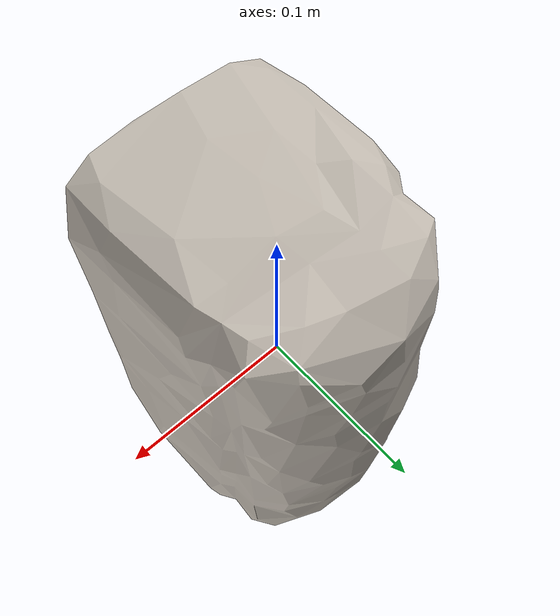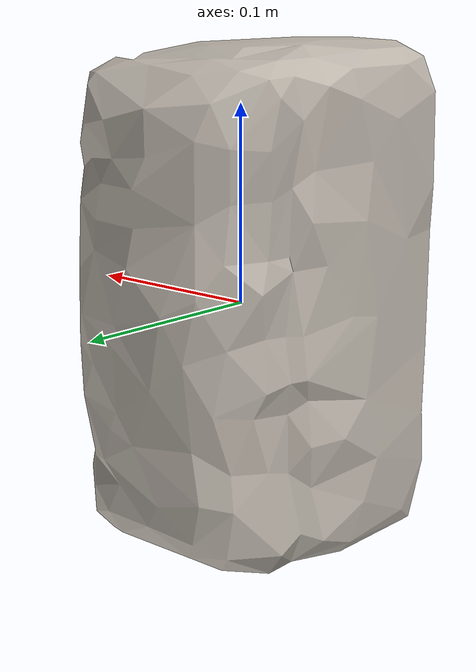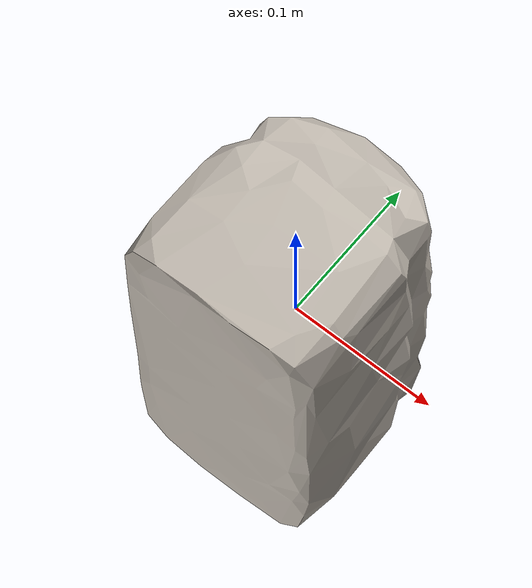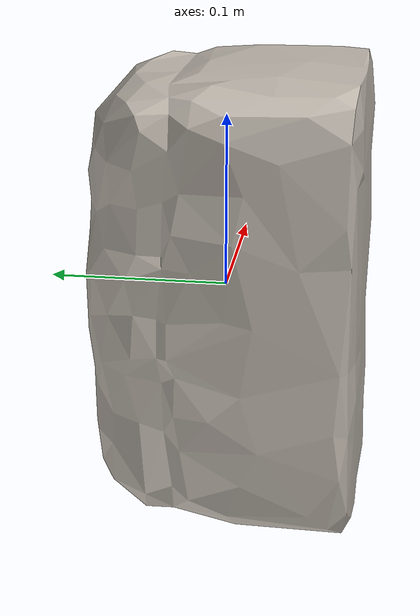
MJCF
<mujoco model="Bread_6">
  <compiler autolimits="true" boundmass="0.01" angle="radian"/>
  <default>
    <default class="/">
      <default class="__VISUAL_MJT__">
        <geom contype="0" conaffinity="0" group="0"/>
      </default>
      <default class="__STRUCTURAL_MJT__">
        <geom contype="8" conaffinity="15" group="4" friction="0.90000000000000002 0.90000000000000002 0.001" solref="0.025000000000000001 1" solimp="0.998 0.998 0.001"/>
      </default>
      <default class="__DYNAMIC_MJT__">
        <geom contype="1" conaffinity="15" group="4" friction="0.90000000000000002 0.90000000000000002 0.001" solref="0.025000000000000001 1" solimp="0.998 0.998 0.001"/>
      </default>
    </default>
  </default>
  <asset>
    <texture name="Bread3_Mat1" type="2d" file="Bread3_AlbedoTransparency.png"/>
    <material name="material_Bread3_Mat1" class="/" texture="Bread3_Mat1" specular="0.5" shininess="0.5" rgba="1 1 1 1"/>
    <mesh name="Bread_6_bread3_a_mesh" class="/" file="Bread_6_bread3_a_mesh/Bread_6_bread3_a_mesh.obj" scale="1 1 1"/>
  </asset>
  <worldbody>
    <body name="Bread_6">
      <joint name="Bread_6_free" class="/" type="free" pos="0 0 0" axis="0 0 1" stiffness="0" range="0 0" armature="0" damping="0.10000000000000001" frictionloss="0"/>
      <body name="Bread_6_bread3_a_mesh" pos="-0 -0.00055999999999999995 0" quat="1 0 0 0">
        <geom name="Bread_6_bread3_a_mesh" class="__VISUAL_MJT__" type="mesh" material="material_Bread3_Mat1" shellinertia="false" mesh="Bread_6_bread3_a_mesh"/>
        <geom name="Bread_6_PrimitiveCollider_0" class="__DYNAMIC_MJT__" type="box" size="0.071858815848827362 0.055224999785423279 0.13202667236328125" rgba="0 1 0 1" pos="-0 -0.025087937712669373 0" quat="1 0 0 0"/>
        <geom name="Bread_6_PrimitiveCollider_1" class="__DYNAMIC_MJT__" type="capsule" size="0.050918340682983398 0.072554551064968109" rgba="0 1 0 1" pos="-0 0.030518174171447754 8.9406967163085938e-08" quat="0.99999999999891198 1.4751396607739272e-06 0 0"/>
      </body>
    </body>
  </worldbody>
</mujoco>
